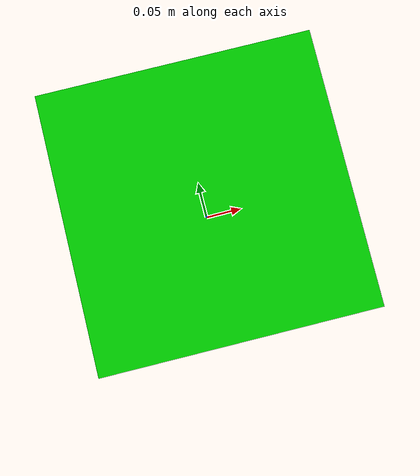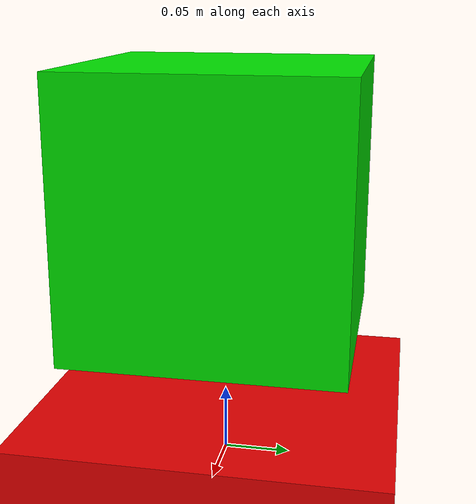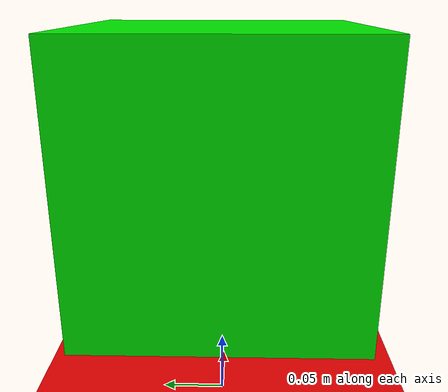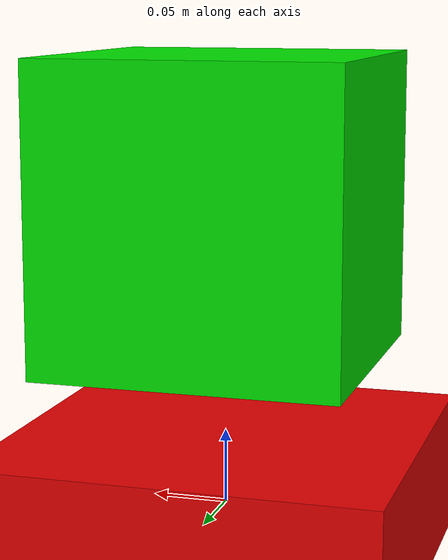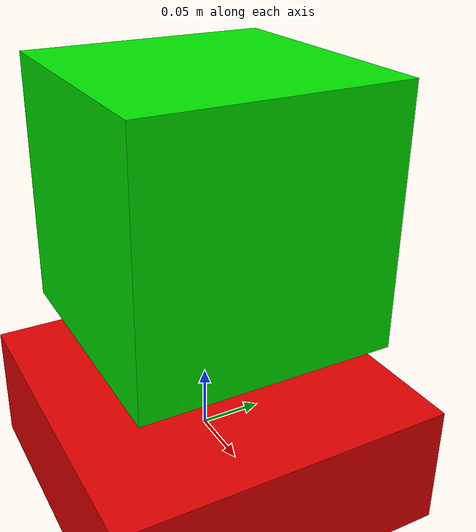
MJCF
<mujoco>
  <worldbody>
    <light diffuse=".5 .5 .5" pos="0 0 3" dir="0 0 -1"/>
    <geom name="ground" type="box" size="1 1 0.05" rgba=".9 0 0 1"/>
    <body>
      <joint type="free"/>
      <geom name="box" type="box"  euler="0 0 0" pos="0 0 0.2" size=".1 .1 .1" rgba="0 .9 0 1"/>
    </body>
  </worldbody>
</mujoco>
